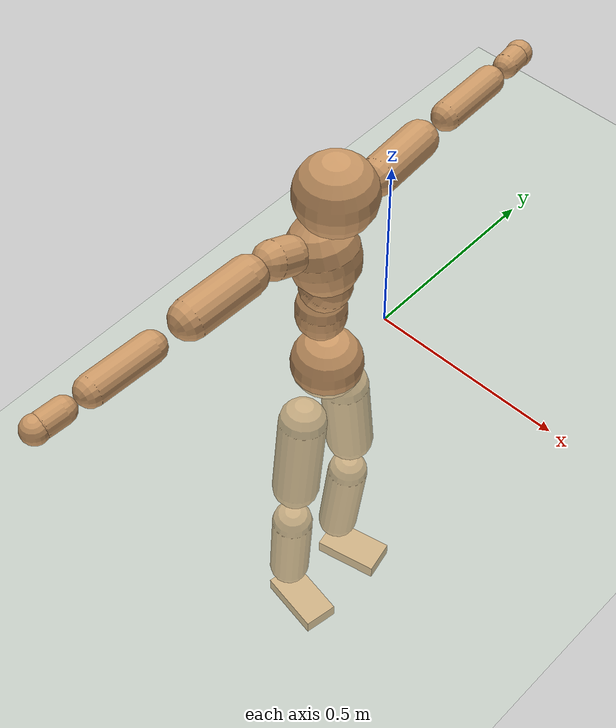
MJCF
<mujoco model="humanoid">
  <compiler coordinate="local"/>
  <default>
    <joint damping="0.0" armature="0.01" stiffness="0.0" limited="true"/>
    <geom conaffinity="1" condim="3" contype="7" margin="0.001" rgba="0.8 0.6 .4 1"/>
  </default>
  <asset>
    <texture type="skybox" builtin="gradient" rgb1=".4 .5 .6" rgb2="0 0 0" width="100" height="100"/>
    <texture builtin="flat" height="1278" mark="cross" markrgb="1 1 1" name="texgeom" random="0.01" rgb1="0.8 0.6 0.4" rgb2="0.8 0.6 0.4" type="cube" width="127"/>
    <texture builtin="checker" height="100" name="texplane" rgb1="0 0 0" rgb2="0.8 0.8 0.8" type="2d" width="100"/>
    <material name="MatPlane" reflectance="0.5" shininess="1" specular="1" texrepeat="60 60" texture="texplane"/>
    <material name="geom" texture="texgeom" texuniform="true"/>
  </asset>
  <worldbody>
    <light cutoff="100" diffuse="1 1 1" dir="-0 0 -1.3" directional="true" exponent="1" pos="0 0 1.3" specular=".1 .1 .1"/>
    <geom conaffinity="1" condim="3" name="floor" pos="0 0 0" rgba="0.8 0.9 0.8 1" size="100 100 .2" type="plane" material="MatPlane"/>
    <body name="Pelvis" pos="-0.0011 -0.2045 0.0211">
      <freejoint name="Pelvis"/>
      <geom type="sphere" contype="1" conaffinity="1" density="500" size="0.0887" pos="0.0000 0.0000 0.0000" name="Pelvis"/>
      <body name="L_Hip" pos="-0.0119 0.069 -0.0905">
        <joint name="L_Hip_x" type="hinge" pos="0 0 0" axis="1 0 0" stiffness="800" damping="80" armature="0.02" range="-180.0000 180.0000"/>
        <joint name="L_Hip_y" type="hinge" pos="0 0 0" axis="0 1 0" stiffness="800" damping="80" armature="0.02" range="-180.0000 180.0000"/>
        <joint name="L_Hip_z" type="hinge" pos="0 0 0" axis="0 0 1" stiffness="800" damping="80" armature="0.02" range="-180.0000 180.0000"/>
        <geom type="capsule" contype="1" conaffinity="1" density="500" fromto="0.0001 0.0080 -0.0808 0.0005 0.0320 -0.3234" size="0.0615" name="L_Hip"/>
        <body name="L_Knee" pos="0.0006 0.04 -0.4042">
          <joint name="L_Knee_x" type="hinge" pos="0 0 0" axis="1 0 0" stiffness="800" damping="80" armature="0.02" range="-180.0000 180.0000"/>
          <joint name="L_Knee_y" type="hinge" pos="0 0 0" axis="0 1 0" stiffness="800" damping="80" armature="0.02" range="-180.0000 180.0000"/>
          <joint name="L_Knee_z" type="hinge" pos="0 0 0" axis="0 0 1" stiffness="800" damping="80" armature="0.02" range="-180.0000 180.0000"/>
          <geom type="capsule" contype="1" conaffinity="1" density="500" fromto="-0.0088 -0.0025 -0.0848 -0.0351 -0.0098 -0.3391" size="0.0531" name="L_Knee"/>
          <body name="L_Ankle" pos="-0.0438 -0.0123 -0.4239">
            <joint name="L_Ankle_x" type="hinge" pos="0 0 0" axis="1 0 0" stiffness="800" damping="80" armature="0.02" range="-180.0000 180.0000"/>
            <joint name="L_Ankle_y" type="hinge" pos="0 0 0" axis="0 1 0" stiffness="800" damping="80" armature="0.02" range="-180.0000 180.0000"/>
            <joint name="L_Ankle_z" type="hinge" pos="0 0 0" axis="0 0 1" stiffness="800" damping="80" armature="0.02" range="-180.0000 180.0000"/>
            <geom type="box" contype="1" conaffinity="1" density="500" pos="0.0601 0.0127 -0.0294" size="0.0858 0.0456 0.0203" quat="0.9946 0.0000 0.0000 0.1037" name="L_Ankle"/>
            <body name="L_Toe" pos="0.1202 0.0253 -0.0589">
              <joint name="L_Toe_x" type="hinge" pos="0 0 0" axis="1 0 0" stiffness="500" damping="50" armature="0.02" range="-180.0000 180.0000"/>
              <joint name="L_Toe_y" type="hinge" pos="0 0 0" axis="0 1 0" stiffness="500" damping="50" armature="0.02" range="-180.0000 180.0000"/>
              <joint name="L_Toe_z" type="hinge" pos="0 0 0" axis="0 0 1" stiffness="500" damping="50" armature="0.02" range="-180.0000 180.0000"/>
              <geom type="box" contype="1" conaffinity="1" density="500" pos="0.0000 0.0000 0.0294" size="0.0009 0.0023 0.001" quat="0.9939 0.0000 0.0000 0.1098" name="L_Toe"/>
            </body>
          </body>
        </body>
      </body>
      <body name="R_Hip" pos="-0.009 -0.0663 -0.0892">
        <joint name="R_Hip_x" type="hinge" pos="0 0 0" axis="1 0 0" stiffness="800" damping="80" armature="0.02" range="-180.0000 180.0000"/>
        <joint name="R_Hip_y" type="hinge" pos="0 0 0" axis="0 1 0" stiffness="800" damping="80" armature="0.02" range="-180.0000 180.0000"/>
        <joint name="R_Hip_z" type="hinge" pos="0 0 0" axis="0 0 1" stiffness="800" damping="80" armature="0.02" range="-180.0000 180.0000"/>
        <geom type="capsule" contype="1" conaffinity="1" density="500" fromto="-0.0007 -0.0090 -0.0821 -0.0027 -0.0361 -0.3285" size="0.0605" name="R_Hip"/>
        <body name="R_Knee" pos="-0.0033 -0.0451 -0.4106">
          <joint name="R_Knee_x" type="hinge" pos="0 0 0" axis="1 0 0" stiffness="800" damping="80" armature="0.02" range="-180.0000 180.0000"/>
          <joint name="R_Knee_y" type="hinge" pos="0 0 0" axis="0 1 0" stiffness="800" damping="80" armature="0.02" range="-180.0000 180.0000"/>
          <joint name="R_Knee_z" type="hinge" pos="0 0 0" axis="0 0 1" stiffness="800" damping="80" armature="0.02" range="-180.0000 180.0000"/>
          <geom type="capsule" contype="1" conaffinity="1" density="500" fromto="-0.0084 0.0030 -0.0846 -0.0337 0.0121 -0.3384" size="0.0534" name="R_Knee"/>
          <body name="R_Ankle" pos="-0.0421 0.0152 -0.423">
            <joint name="R_Ankle_x" type="hinge" pos="0 0 0" axis="1 0 0" stiffness="800" damping="80" armature="0.02" range="-180.0000 180.0000"/>
            <joint name="R_Ankle_y" type="hinge" pos="0 0 0" axis="0 1 0" stiffness="800" damping="80" armature="0.02" range="-180.0000 180.0000"/>
            <joint name="R_Ankle_z" type="hinge" pos="0 0 0" axis="0 0 1" stiffness="800" damping="80" armature="0.02" range="-180.0000 180.0000"/>
            <geom type="box" contype="1" conaffinity="1" density="500" pos="0.0619 -0.0109 -0.0249" size="0.0874 0.0454 0.0202" quat="0.9962 0.0000 0.0000 -0.0873" name="R_Ankle"/>
            <body name="R_Toe" pos="0.1238 -0.0218 -0.0497">
              <joint name="R_Toe_x" type="hinge" pos="0 0 0" axis="1 0 0" stiffness="500" damping="50" armature="0.02" range="-180.0000 180.0000"/>
              <joint name="R_Toe_y" type="hinge" pos="0 0 0" axis="0 1 0" stiffness="500" damping="50" armature="0.02" range="-180.0000 180.0000"/>
              <joint name="R_Toe_z" type="hinge" pos="0 0 0" axis="0 0 1" stiffness="500" damping="50" armature="0.02" range="-180.0000 180.0000"/>
              <geom type="box" contype="1" conaffinity="1" density="500" pos="0.0000 0.0000 0.0273" size="0.0008 0.0022 0.0011" quat="0.9969 0.0000 0.0000 -0.0782" name="R_Toe"/>
            </body>
          </body>
        </body>
      </body>
      <body name="Torso" pos="-0.0175 -0.0028 0.1039">
        <joint name="Torso_x" type="hinge" pos="0 0 0" axis="1 0 0" stiffness="1000" damping="100" armature="0.02" range="-180.0000 180.0000"/>
        <joint name="Torso_y" type="hinge" pos="0 0 0" axis="0 1 0" stiffness="1000" damping="100" armature="0.02" range="-180.0000 180.0000"/>
        <joint name="Torso_z" type="hinge" pos="0 0 0" axis="0 0 1" stiffness="1000" damping="100" armature="0.02" range="-180.0000 180.0000"/>
        <geom type="capsule" contype="1" conaffinity="1" density="500" fromto="-0.0005 0.0022 0.0812 -0.0003 0.0015 0.0541" size="0.0613" name="Torso"/>
        <body name="Spine" pos="-0.0009 0.0037 0.1353">
          <joint name="Spine_x" type="hinge" pos="0 0 0" axis="1 0 0" stiffness="1000" damping="100" armature="0.02" range="-180.0000 180.0000"/>
          <joint name="Spine_y" type="hinge" pos="0 0 0" axis="0 1 0" stiffness="1000" damping="100" armature="0.02" range="-180.0000 180.0000"/>
          <joint name="Spine_z" type="hinge" pos="0 0 0" axis="0 0 1" stiffness="1000" damping="100" armature="0.02" range="-180.0000 180.0000"/>
          <geom type="capsule" contype="1" conaffinity="1" density="500" fromto="0.0141 0.0011 0.0293 0.0094 0.0008 0.0195" size="0.0612" name="Spine"/>
          <body name="Chest" pos="0.0235 0.0019 0.0488">
            <joint name="Chest_x" type="hinge" pos="0 0 0" axis="1 0 0" stiffness="1000" damping="100" armature="0.02" range="-180.0000 180.0000"/>
            <joint name="Chest_y" type="hinge" pos="0 0 0" axis="0 1 0" stiffness="1000" damping="100" armature="0.02" range="-180.0000 180.0000"/>
            <joint name="Chest_z" type="hinge" pos="0 0 0" axis="0 0 1" stiffness="1000" damping="100" armature="0.02" range="-180.0000 180.0000"/>
            <geom type="capsule" contype="1" conaffinity="1" density="500" fromto="-0.0220 -0.0008 0.0869 -0.0146 -0.0006 0.0579" size="0.085" name="Chest"/>
            <body name="Neck" pos="-0.0391 -0.0028 0.2069">
              <joint name="Neck_x" type="hinge" pos="0 0 0" axis="1 0 0" stiffness="500" damping="50" armature="0.02" range="-180.0000 180.0000"/>
              <joint name="Neck_y" type="hinge" pos="0 0 0" axis="0 1 0" stiffness="500" damping="50" armature="0.02" range="-180.0000 180.0000"/>
              <joint name="Neck_z" type="hinge" pos="0 0 0" axis="0 0 1" stiffness="500" damping="50" armature="0.02" range="-180.0000 180.0000"/>
              <geom type="capsule" contype="1" conaffinity="1" density="500" fromto="0.0103 0.0011 0.0134 0.0412 0.0043 0.0535" size="0.0385" name="Neck"/>
              <body name="Head" pos="0.0515 0.0054 0.0669">
                <joint name="Head_x" type="hinge" pos="0 0 0" axis="1 0 0" stiffness="500" damping="50" armature="0.02" range="-180.0000 180.0000"/>
                <joint name="Head_y" type="hinge" pos="0 0 0" axis="0 1 0" stiffness="500" damping="50" armature="0.02" range="-180.0000 180.0000"/>
                <joint name="Head_z" type="hinge" pos="0 0 0" axis="0 0 1" stiffness="500" damping="50" armature="0.02" range="-180.0000 180.0000"/>
                <geom type="sphere" contype="1" conaffinity="1" density="500" size="0.0951" pos="0.0000 0.0000 0.0000" name="Head"/>
              </body>
            </body>
            <body name="L_Thorax" pos="-0.0328 0.0683 0.115">
              <joint name="L_Thorax_x" type="hinge" pos="0 0 0" axis="1 0 0" stiffness="500" damping="50" armature="0.02" range="-180.0000 180.0000"/>
              <joint name="L_Thorax_y" type="hinge" pos="0 0 0" axis="0 1 0" stiffness="500" damping="50" armature="0.02" range="-180.0000 180.0000"/>
              <joint name="L_Thorax_z" type="hinge" pos="0 0 0" axis="0 0 1" stiffness="500" damping="50" armature="0.02" range="-180.0000 180.0000"/>
              <geom type="capsule" contype="1" conaffinity="1" density="500" fromto="-0.0006 0.0158 0.0069 -0.0024 0.0630 0.0277" size="0.0465" name="L_Thorax"/>
              <body name="L_Shoulder" pos="-0.003 0.0788 0.0347">
                <joint name="L_Shoulder_x" type="hinge" pos="0 0 0" axis="1 0 0" stiffness="500" damping="50" armature="0.02" range="-720.0000 720.0000"/>
                <joint name="L_Shoulder_y" type="hinge" pos="0 0 0" axis="0 1 0" stiffness="500" damping="50" armature="0.02" range="-720.0000 720.0000"/>
                <joint name="L_Shoulder_z" type="hinge" pos="0 0 0" axis="0 0 1" stiffness="500" damping="50" armature="0.02" range="-720.0000 720.0000"/>
                <geom type="capsule" contype="1" conaffinity="1" density="500" fromto="-0.0056 0.0532 -0.0038 -0.0224 0.2128 -0.0150" size="0.0464" name="L_Shoulder"/>
                <body name="L_Elbow" pos="-0.028 0.2661 -0.0188">
                  <joint name="L_Elbow_x" type="hinge" pos="0 0 0" axis="1 0 0" stiffness="500" damping="50" armature="0.02" range="-720.0000 720.0000"/>
                  <joint name="L_Elbow_y" type="hinge" pos="0 0 0" axis="0 1 0" stiffness="500" damping="50" armature="0.02" range="-720.0000 720.0000"/>
                  <joint name="L_Elbow_z" type="hinge" pos="0 0 0" axis="0 0 1" stiffness="500" damping="50" armature="0.02" range="-720.0000 720.0000"/>
                  <geom type="capsule" contype="1" conaffinity="1" density="500" fromto="-0.0002 0.0514 0.0022 -0.0007 0.2056 0.0087" size="0.0365" name="L_Elbow"/>
                  <body name="L_Wrist" pos="-0.0008 0.257 0.0109">
                    <joint name="L_Wrist_x" type="hinge" pos="0 0 0" axis="1 0 0" stiffness="300" damping="30" armature="0.02" range="-180.0000 180.0000"/>
                    <joint name="L_Wrist_y" type="hinge" pos="0 0 0" axis="0 1 0" stiffness="300" damping="30" armature="0.02" range="-180.0000 180.0000"/>
                    <joint name="L_Wrist_z" type="hinge" pos="0 0 0" axis="0 0 1" stiffness="300" damping="30" armature="0.02" range="-180.0000 180.0000"/>
                    <geom type="capsule" contype="1" conaffinity="1" density="500" fromto="-0.0028 0.0163 -0.0021 -0.0111 0.0653 -0.0083" size="0.0302" name="L_Wrist"/>
                    <body name="L_Hand" pos="-0.0138 0.0816 -0.0104">
                      <joint name="L_Hand_x" type="hinge" pos="0 0 0" axis="1 0 0" stiffness="300" damping="30" armature="0.02" range="-180.0000 180.0000"/>
                      <joint name="L_Hand_y" type="hinge" pos="0 0 0" axis="0 1 0" stiffness="300" damping="30" armature="0.02" range="-180.0000 180.0000"/>
                      <joint name="L_Hand_z" type="hinge" pos="0 0 0" axis="0 0 1" stiffness="300" damping="30" armature="0.02" range="-180.0000 180.0000"/>
                      <geom type="sphere" contype="1" conaffinity="1" density="500" size="0.0327" pos="0.0000 0.0000 0.0000" name="L_Hand"/>
                    </body>
                  </body>
                </body>
              </body>
            </body>
            <body name="R_Thorax" pos="-0.038 -0.0698 0.1125">
              <joint name="R_Thorax_x" type="hinge" pos="0 0 0" axis="1 0 0" stiffness="500" damping="50" armature="0.02" range="-180.0000 180.0000"/>
              <joint name="R_Thorax_y" type="hinge" pos="0 0 0" axis="0 1 0" stiffness="500" damping="50" armature="0.02" range="-180.0000 180.0000"/>
              <joint name="R_Thorax_z" type="hinge" pos="0 0 0" axis="0 0 1" stiffness="500" damping="50" armature="0.02" range="-180.0000 180.0000"/>
              <geom type="capsule" contype="1" conaffinity="1" density="500" fromto="-0.0012 -0.0166 0.0071 -0.0046 -0.0666 0.0282" size="0.0455" name="R_Thorax"/>
              <body name="R_Shoulder" pos="-0.0058 -0.0832 0.0353">
                <joint name="R_Shoulder_x" type="hinge" pos="0 0 0" axis="1 0 0" stiffness="500" damping="50" armature="0.02" range="-720.0000 720.0000"/>
                <joint name="R_Shoulder_y" type="hinge" pos="0 0 0" axis="0 1 0" stiffness="500" damping="50" armature="0.02" range="-720.0000 720.0000"/>
                <joint name="R_Shoulder_z" type="hinge" pos="0 0 0" axis="0 0 1" stiffness="500" damping="50" armature="0.02" range="-720.0000 720.0000"/>
                <geom type="capsule" contype="1" conaffinity="1" density="500" fromto="-0.0040 -0.0521 -0.0037 -0.0160 -0.2083 -0.0146" size="0.0475" name="R_Shoulder"/>
                <body name="R_Elbow" pos="-0.0201 -0.2603 -0.0183">
                  <joint name="R_Elbow_x" type="hinge" pos="0 0 0" axis="1 0 0" stiffness="500" damping="50" armature="0.02" range="-720.0000 720.0000"/>
                  <joint name="R_Elbow_y" type="hinge" pos="0 0 0" axis="0 1 0" stiffness="500" damping="50" armature="0.02" range="-720.0000 720.0000"/>
                  <joint name="R_Elbow_z" type="hinge" pos="0 0 0" axis="0 0 1" stiffness="500" damping="50" armature="0.02" range="-720.0000 720.0000"/>
                  <geom type="capsule" contype="1" conaffinity="1" density="500" fromto="-0.0012 -0.0528 0.0017 -0.0047 -0.2114 0.0069" size="0.0363" name="R_Elbow"/>
                  <body name="R_Wrist" pos="-0.0059 -0.2642 0.0086">
                    <joint name="R_Wrist_x" type="hinge" pos="0 0 0" axis="1 0 0" stiffness="300" damping="30" armature="0.02" range="-180.0000 180.0000"/>
                    <joint name="R_Wrist_y" type="hinge" pos="0 0 0" axis="0 1 0" stiffness="300" damping="30" armature="0.02" range="-180.0000 180.0000"/>
                    <joint name="R_Wrist_z" type="hinge" pos="0 0 0" axis="0 0 1" stiffness="300" damping="30" armature="0.02" range="-180.0000 180.0000"/>
                    <geom type="capsule" contype="1" conaffinity="1" density="500" fromto="-0.0021 -0.0164 -0.0015 -0.0085 -0.0655 -0.0060" size="0.0306" name="R_Wrist"/>
                    <body name="R_Hand" pos="-0.0107 -0.0818 -0.0075">
                      <joint name="R_Hand_x" type="hinge" pos="0 0 0" axis="1 0 0" stiffness="300" damping="30" armature="0.02" range="-180.0000 180.0000"/>
                      <joint name="R_Hand_y" type="hinge" pos="0 0 0" axis="0 1 0" stiffness="300" damping="30" armature="0.02" range="-180.0000 180.0000"/>
                      <joint name="R_Hand_z" type="hinge" pos="0 0 0" axis="0 0 1" stiffness="300" damping="30" armature="0.02" range="-180.0000 180.0000"/>
                      <geom type="sphere" contype="1" conaffinity="1" density="500" size="0.0327" pos="0.0000 0.0000 0.0000" name="R_Hand"/>
                    </body>
                  </body>
                </body>
              </body>
            </body>
          </body>
        </body>
      </body>
    </body>
  </worldbody>
  <actuator>
    <motor name="L_Hip_x" joint="L_Hip_x" gear="500"/>
    <motor name="L_Hip_y" joint="L_Hip_y" gear="500"/>
    <motor name="L_Hip_z" joint="L_Hip_z" gear="500"/>
    <motor name="L_Knee_x" joint="L_Knee_x" gear="500"/>
    <motor name="L_Knee_y" joint="L_Knee_y" gear="500"/>
    <motor name="L_Knee_z" joint="L_Knee_z" gear="500"/>
    <motor name="L_Ankle_x" joint="L_Ankle_x" gear="500"/>
    <motor name="L_Ankle_y" joint="L_Ankle_y" gear="500"/>
    <motor name="L_Ankle_z" joint="L_Ankle_z" gear="500"/>
    <motor name="L_Toe_x" joint="L_Toe_x" gear="500"/>
    <motor name="L_Toe_y" joint="L_Toe_y" gear="500"/>
    <motor name="L_Toe_z" joint="L_Toe_z" gear="500"/>
    <motor name="R_Hip_x" joint="R_Hip_x" gear="500"/>
    <motor name="R_Hip_y" joint="R_Hip_y" gear="500"/>
    <motor name="R_Hip_z" joint="R_Hip_z" gear="500"/>
    <motor name="R_Knee_x" joint="R_Knee_x" gear="500"/>
    <motor name="R_Knee_y" joint="R_Knee_y" gear="500"/>
    <motor name="R_Knee_z" joint="R_Knee_z" gear="500"/>
    <motor name="R_Ankle_x" joint="R_Ankle_x" gear="500"/>
    <motor name="R_Ankle_y" joint="R_Ankle_y" gear="500"/>
    <motor name="R_Ankle_z" joint="R_Ankle_z" gear="500"/>
    <motor name="R_Toe_x" joint="R_Toe_x" gear="500"/>
    <motor name="R_Toe_y" joint="R_Toe_y" gear="500"/>
    <motor name="R_Toe_z" joint="R_Toe_z" gear="500"/>
    <motor name="Torso_x" joint="Torso_x" gear="500"/>
    <motor name="Torso_y" joint="Torso_y" gear="500"/>
    <motor name="Torso_z" joint="Torso_z" gear="500"/>
    <motor name="Spine_x" joint="Spine_x" gear="500"/>
    <motor name="Spine_y" joint="Spine_y" gear="500"/>
    <motor name="Spine_z" joint="Spine_z" gear="500"/>
    <motor name="Chest_x" joint="Chest_x" gear="500"/>
    <motor name="Chest_y" joint="Chest_y" gear="500"/>
    <motor name="Chest_z" joint="Chest_z" gear="500"/>
    <motor name="Neck_x" joint="Neck_x" gear="500"/>
    <motor name="Neck_y" joint="Neck_y" gear="500"/>
    <motor name="Neck_z" joint="Neck_z" gear="500"/>
    <motor name="Head_x" joint="Head_x" gear="500"/>
    <motor name="Head_y" joint="Head_y" gear="500"/>
    <motor name="Head_z" joint="Head_z" gear="500"/>
    <motor name="L_Thorax_x" joint="L_Thorax_x" gear="500"/>
    <motor name="L_Thorax_y" joint="L_Thorax_y" gear="500"/>
    <motor name="L_Thorax_z" joint="L_Thorax_z" gear="500"/>
    <motor name="L_Shoulder_x" joint="L_Shoulder_x" gear="500"/>
    <motor name="L_Shoulder_y" joint="L_Shoulder_y" gear="500"/>
    <motor name="L_Shoulder_z" joint="L_Shoulder_z" gear="500"/>
    <motor name="L_Elbow_x" joint="L_Elbow_x" gear="500"/>
    <motor name="L_Elbow_y" joint="L_Elbow_y" gear="500"/>
    <motor name="L_Elbow_z" joint="L_Elbow_z" gear="500"/>
    <motor name="L_Wrist_x" joint="L_Wrist_x" gear="500"/>
    <motor name="L_Wrist_y" joint="L_Wrist_y" gear="500"/>
    <motor name="L_Wrist_z" joint="L_Wrist_z" gear="500"/>
    <motor name="L_Hand_x" joint="L_Hand_x" gear="500"/>
    <motor name="L_Hand_y" joint="L_Hand_y" gear="500"/>
    <motor name="L_Hand_z" joint="L_Hand_z" gear="500"/>
    <motor name="R_Thorax_x" joint="R_Thorax_x" gear="500"/>
    <motor name="R_Thorax_y" joint="R_Thorax_y" gear="500"/>
    <motor name="R_Thorax_z" joint="R_Thorax_z" gear="500"/>
    <motor name="R_Shoulder_x" joint="R_Shoulder_x" gear="500"/>
    <motor name="R_Shoulder_y" joint="R_Shoulder_y" gear="500"/>
    <motor name="R_Shoulder_z" joint="R_Shoulder_z" gear="500"/>
    <motor name="R_Elbow_x" joint="R_Elbow_x" gear="500"/>
    <motor name="R_Elbow_y" joint="R_Elbow_y" gear="500"/>
    <motor name="R_Elbow_z" joint="R_Elbow_z" gear="500"/>
    <motor name="R_Wrist_x" joint="R_Wrist_x" gear="500"/>
    <motor name="R_Wrist_y" joint="R_Wrist_y" gear="500"/>
    <motor name="R_Wrist_z" joint="R_Wrist_z" gear="500"/>
    <motor name="R_Hand_x" joint="R_Hand_x" gear="500"/>
    <motor name="R_Hand_y" joint="R_Hand_y" gear="500"/>
    <motor name="R_Hand_z" joint="R_Hand_z" gear="500"/>
  </actuator>
  <contact>
    <exclude body1="Torso" body2="Chest"/>
    <exclude body1="Head" body2="Chest"/>
    <exclude body1="R_Knee" body2="R_Toe"/>
    <exclude body1="R_Knee" body2="L_Ankle"/>
    <exclude body1="R_Knee" body2="L_Toe"/>
    <exclude body1="L_Knee" body2="L_Toe"/>
    <exclude body1="L_Knee" body2="R_Ankle"/>
    <exclude body1="L_Knee" body2="R_Toe"/>
    <exclude body1="L_Shoulder" body2="Chest"/>
    <exclude body1="R_Shoulder" body2="Chest"/>
  </contact>
  <sensor/>
  <size njmax="700" nconmax="700"/>
</mujoco>
